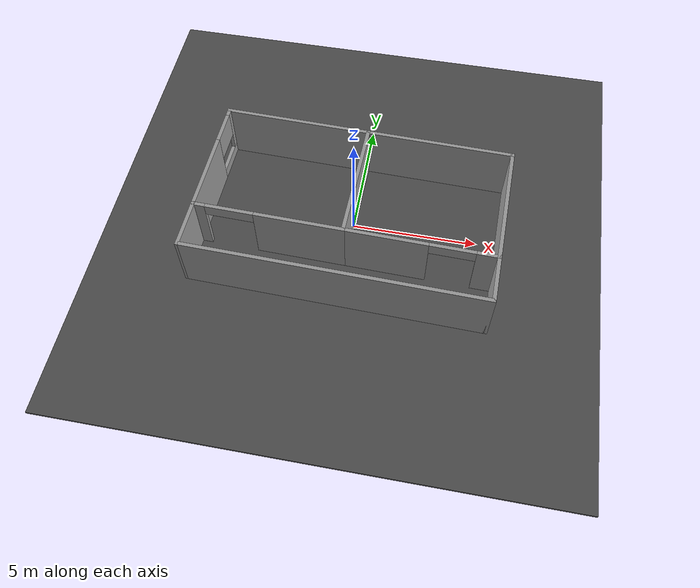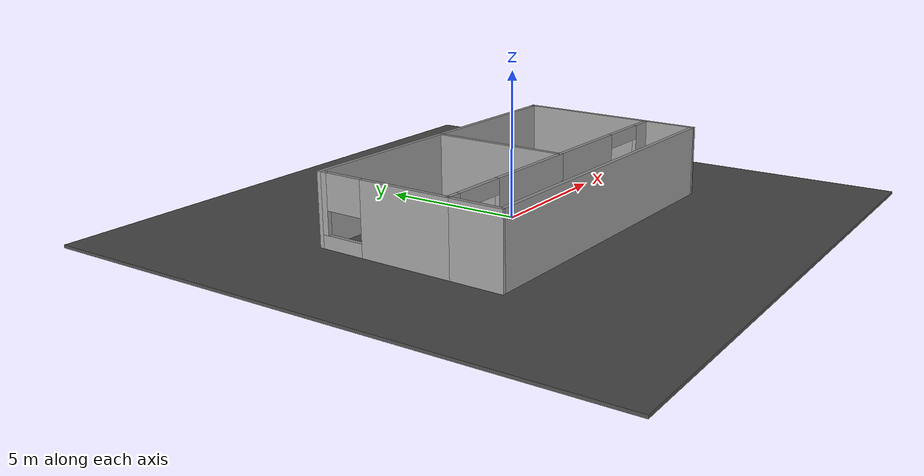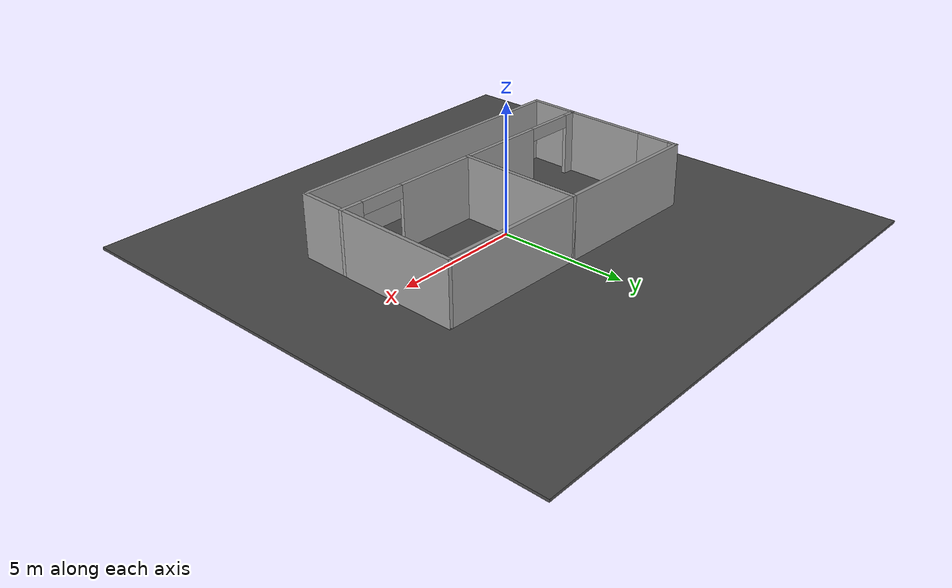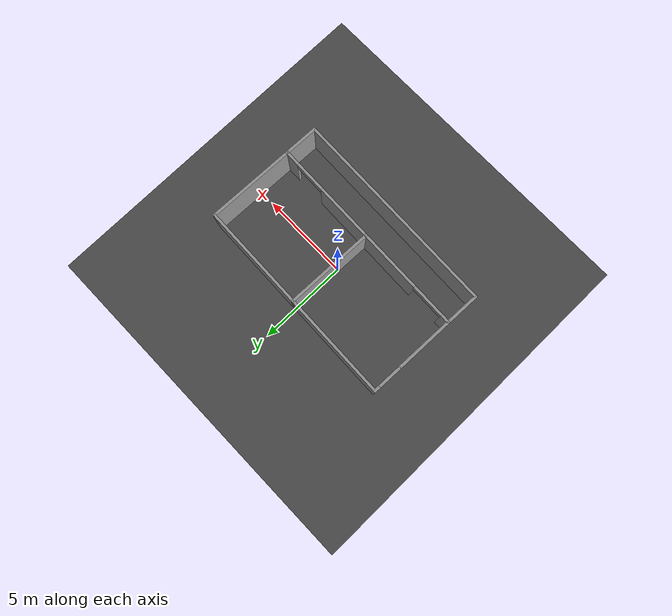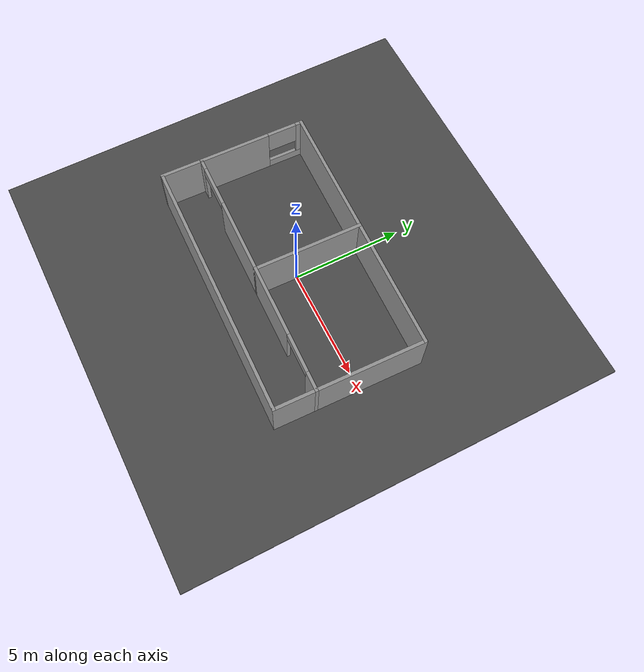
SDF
<sdf version="1.6">
 <world name="default">
  <scene><ambient>0.5 0.5 0.5 1</ambient><background>0.5 0.5 0.5 1</background><shadows>0</shadows></scene>
  <physics name="default_physics" default="0" type="ode">
   <ode>
    <solver>
     <type>quick</type>
     <iters>10</iters>
     <sor>1.3</sor>
     <use_dynamic_moi_rescaling>0</use_dynamic_moi_rescaling>
    </solver>
    <constraints>
     <cfm>0</cfm>
     <erp>0.2</erp>
     <contact_max_correcting_vel>100</contact_max_correcting_vel>
     <contact_surface_layer>0.001</contact_surface_layer>
    </constraints>
   </ode>
   <real_time_update_rate>1000</real_time_update_rate>
   <max_step_size>0.001</max_step_size>
   <real_time_factor>1</real_time_factor>
  </physics>
  <light name="directional_light_1" type="directional">
   <cast_shadows>0</cast_shadows>
   <pose>0 0 30 0.1 0.1 0</pose>
   <diffuse>1 1 1 1</diffuse>
   <specular>0.1 0.1 0.1 1</specular>
   <attenuation><range>300</range></attenuation>
   <direction>0.1 0.1 -1</direction>
  </light>
  <model name="plane_model">
   <static>1</static>
   <link name="plane_model_link">
    <collision name="plane_model_collision">
     <geometry><plane><normal>0 0 1</normal><size>1 1</size></plane></geometry>
     <surface>
      <friction><ode><mu>10</mu><mu2>10</mu2><fdir1>0 0 0</fdir1><slip1>0</slip1><slip2>0</slip2></ode></friction>
      <bounce><restitution_coefficient>0</restitution_coefficient><threshold>1e+06</threshold></bounce>
      <contact>
       <ode>
        <soft_cfm>0</soft_cfm>
        <soft_erp>0.2</soft_erp>
        <kp>1e+10</kp>
        <kd>1</kd>
        <max_vel>100</max_vel>
        <min_depth>0.0001</min_depth>
       </ode>
      </contact>
     </surface>
    </collision>
    <velocity_decay><linear>0</linear><angular>0</angular></velocity_decay>
   </link>
  </model>
  <model name="asphalt_plane">
   <static>1</static>
   <link name="link">
    <collision name="collision"><geometry><box><size>20 20 0.1</size></box></geometry></collision>
    <visual name="visual">
     <cast_shadows>0</cast_shadows>
     <geometry><box><size>20 20 0.1</size></box></geometry>
     <material>
      <script>
       <uri>model://asphalt_plane/materials/scripts</uri>
       <uri>model://asphalt_plane/materials/textures</uri>
       <name>vrc/asphalt</name>
      </script>
     </material>
    </visual>
    <velocity_decay><linear>0</linear><angular>0</angular></velocity_decay>
   </link>
   <pose>-0.010451 0.055967 0 0 -0 0</pose>
  </model>
  <spherical_coordinates>
   <surface_model>EARTH_WGS84</surface_model>
   <latitude_deg>0</latitude_deg>
   <longitude_deg>0</longitude_deg>
   <elevation>0</elevation>
   <heading_deg>0</heading_deg>
  </spherical_coordinates>
  <gravity>0 0 -9.81</gravity>
  <magnetic_field>6e-06 2.3e-05 -4.2e-05</magnetic_field>
  <atmosphere type="adiabatic"/>
  <model name="smaller_tworooms">
   <pose>-0.031771 -0.367239 0 0 -0 3.11512</pose>
   <link name="Wall_0">
    <pose>2.925 1.5 0 0 -0 0</pose>
    <visual name="Wall_0_Visual_0">
     <pose>-1.22619 0 1.25 0 -0 0</pose>
     <geometry><box><size>3.54761 0.15 2.5</size></box></geometry>
     <material>
      <script><uri>file://media/materials/scripts/gazebo.material</uri><name>Gazebo/Grey</name></script>
      <ambient>1 1 1 1</ambient>
     </material>
     <meta><layer>0</layer></meta>
    </visual>
    <collision name="Wall_0_Collision_0">
     <geometry><box><size>3.54761 0.15 2.5</size></box></geometry>
     <pose>-1.22619 0 1.25 0 -0 0</pose>
    </collision>
    <visual name="Wall_0_Visual_1">
     <pose>2.72664 0 1.25 0 -0 0</pose>
     <geometry><box><size>0.546712 0.15 2.5</size></box></geometry>
     <material>
      <script><uri>file://media/materials/scripts/gazebo.material</uri><name>Gazebo/Grey</name></script>
      <ambient>1 1 1 1</ambient>
     </material>
     <meta><layer>0</layer></meta>
    </visual>
    <collision name="Wall_0_Collision_1">
     <geometry><box><size>0.546712 0.15 2.5</size></box></geometry>
     <pose>2.72664 0 1.25 0 -0 0</pose>
    </collision>
    <visual name="Wall_0_Visual_2">
     <pose>1.50045 0 2.25 0 -0 0</pose>
     <geometry><box><size>1.90568 0.15 0.5</size></box></geometry>
     <material>
      <script><uri>file://media/materials/scripts/gazebo.material</uri><name>Gazebo/Grey</name></script>
      <ambient>1 1 1 1</ambient>
     </material>
     <meta><layer>0</layer></meta>
    </visual>
    <collision name="Wall_0_Collision_2">
     <geometry><box><size>1.90568 0.15 0.5</size></box></geometry>
     <pose>1.50045 0 2.25 0 -0 0</pose>
    </collision>
   </link>
   <link name="Wall_1">
    <pose>5.85 -0.925 0 0 0 -1.5708</pose>
    <visual name="Wall_1_Visual_0">
     <pose>-0.854528 0 1.25 0 -0 0</pose>
     <geometry><box><size>3.29094 0.15 2.5</size></box></geometry>
     <material>
      <script><uri>file://media/materials/scripts/gazebo.material</uri><name>Gazebo/Grey</name></script>
      <ambient>1 1 1 1</ambient>
     </material>
     <meta><layer>0</layer></meta>
    </visual>
    <collision name="Wall_1_Collision_0">
     <geometry><box><size>3.29094 0.15 2.5</size></box></geometry>
     <pose>-0.854528 0 1.25 0 -0 0</pose>
    </collision>
    <visual name="Wall_1_Visual_1">
     <pose>1.64547 0 0.25 0 -0 0</pose>
     <geometry><box><size>1.70905 0.15 0.5</size></box></geometry>
     <material>
      <script><uri>file://media/materials/scripts/gazebo.material</uri><name>Gazebo/Grey</name></script>
      <ambient>1 1 1 1</ambient>
     </material>
     <meta><layer>0</layer></meta>
    </visual>
    <collision name="Wall_1_Collision_1">
     <geometry><box><size>1.70905 0.15 0.5</size></box></geometry>
     <pose>1.64547 0 0.25 0 -0 0</pose>
    </collision>
    <visual name="Wall_1_Visual_2">
     <pose>2.31701 0 1.5 0 -0 0</pose>
     <geometry><box><size>0.365989 0.15 2</size></box></geometry>
     <material>
      <script><uri>file://media/materials/scripts/gazebo.material</uri><name>Gazebo/Grey</name></script>
      <ambient>1 1 1 1</ambient>
     </material>
     <meta><layer>0</layer></meta>
    </visual>
    <collision name="Wall_1_Collision_2">
     <geometry><box><size>0.365989 0.15 2</size></box></geometry>
     <pose>2.31701 0 1.5 0 -0 0</pose>
    </collision>
    <visual name="Wall_1_Visual_3">
     <pose>1.46248 0 1.9 0 -0 0</pose>
     <geometry><box><size>1.34307 0.15 1.2</size></box></geometry>
     <material>
      <script><uri>file://media/materials/scripts/gazebo.material</uri><name>Gazebo/Grey</name></script>
      <ambient>1 1 1 1</ambient>
     </material>
     <meta><layer>0</layer></meta>
    </visual>
    <collision name="Wall_1_Collision_3">
     <geometry><box><size>1.34307 0.15 1.2</size></box></geometry>
     <pose>1.46248 0 1.9 0 -0 0</pose>
    </collision>
   </link>
   <link name="Wall_10">
    <collision name="Wall_10_Collision">
     <geometry><box><size>2 0.15 2.5</size></box></geometry>
     <pose>0 0 1.25 0 -0 0</pose>
    </collision>
    <visual name="Wall_10_Visual">
     <pose>0 0 1.25 0 -0 0</pose>
     <geometry><box><size>2 0.15 2.5</size></box></geometry>
     <material>
      <script><uri>file://media/materials/scripts/gazebo.material</uri><name>Gazebo/Grey</name></script>
      <ambient>1 1 1 1</ambient>
     </material>
     <meta><layer>0</layer></meta>
    </visual>
    <pose>5.85 2.425 0 0 0 -1.5708</pose>
   </link>
   <link name="Wall_14">
    <collision name="Wall_14_Collision">
     <geometry><box><size>2 0.15 2.5</size></box></geometry>
     <pose>0 0 1.25 0 -0 0</pose>
    </collision>
    <visual name="Wall_14_Visual">
     <pose>0 0 1.25 0 -0 0</pose>
     <geometry><box><size>2 0.15 2.5</size></box></geometry>
     <material>
      <script><uri>file://media/materials/scripts/gazebo.material</uri><name>Gazebo/Grey</name></script>
      <ambient>1 1 1 1</ambient>
     </material>
     <meta><layer>0</layer></meta>
    </visual>
    <pose>-5.85 2.425 0 0 -0 1.5708</pose>
   </link>
   <link name="Wall_16">
    <collision name="Wall_16_Collision">
     <geometry><box><size>11.75 0.15 2.5</size></box></geometry>
     <pose>0 0 1.25 0 -0 0</pose>
    </collision>
    <visual name="Wall_16_Visual">
     <pose>0 0 1.25 0 -0 0</pose>
     <geometry><box><size>11.75 0.15 2.5</size></box></geometry>
     <material>
      <script><uri>file://media/materials/scripts/gazebo.material</uri><name>Gazebo/Grey</name></script>
      <ambient>1 1 1 1</ambient>
     </material>
     <meta><layer>0</layer></meta>
    </visual>
    <pose>-0.05 3.35 0 0 -0 0</pose>
   </link>
   <link name="Wall_2">
    <collision name="Wall_2_Collision">
     <geometry><box><size>6 0.15 2.5</size></box></geometry>
     <pose>0 0 1.25 0 -0 0</pose>
    </collision>
    <visual name="Wall_2_Visual">
     <pose>0 0 1.25 0 -0 0</pose>
     <geometry><box><size>6 0.15 2.5</size></box></geometry>
     <material>
      <script><uri>file://media/materials/scripts/gazebo.material</uri><name>Gazebo/Grey</name></script>
      <ambient>1 1 1 1</ambient>
     </material>
     <meta><layer>0</layer></meta>
    </visual>
    <pose>2.925 -3.35 0 0 -0 3.14159</pose>
   </link>
   <link name="Wall_3">
    <collision name="Wall_3_Collision">
     <geometry><box><size>5 0.15 2.5</size></box></geometry>
     <pose>0 0 1.25 0 -0 0</pose>
    </collision>
    <visual name="Wall_3_Visual">
     <pose>0 0 1.25 0 -0 0</pose>
     <geometry><box><size>5 0.15 2.5</size></box></geometry>
     <material>
      <script><uri>file://media/materials/scripts/gazebo.material</uri><name>Gazebo/Grey</name></script>
      <ambient>1 1 1 1</ambient>
     </material>
     <meta><layer>0</layer></meta>
    </visual>
    <pose>0 -0.925 0 0 -0 1.5708</pose>
   </link>
   <link name="Wall_4">
    <pose>-2.925 1.5 0 0 -0 3.14159</pose>
    <visual name="Wall_4_Visual_0">
     <pose>-1.33728 0 1.25 0 -0 0</pose>
     <geometry><box><size>3.32543 0.15 2.5</size></box></geometry>
     <material>
      <script><uri>file://media/materials/scripts/gazebo.material</uri><name>Gazebo/Grey</name></script>
      <ambient>1 1 1 1</ambient>
     </material>
     <meta><layer>0</layer></meta>
    </visual>
    <collision name="Wall_4_Collision_0">
     <geometry><box><size>3.32543 0.15 2.5</size></box></geometry>
     <pose>-1.33728 0 1.25 0 -0 0</pose>
    </collision>
    <visual name="Wall_4_Visual_1">
     <pose>2.54516 0 1.25 0 -0 0</pose>
     <geometry><box><size>0.909682 0.15 2.5</size></box></geometry>
     <material>
      <script><uri>file://media/materials/scripts/gazebo.material</uri><name>Gazebo/Grey</name></script>
      <ambient>1 1 1 1</ambient>
     </material>
     <meta><layer>0</layer></meta>
    </visual>
    <collision name="Wall_4_Collision_1">
     <geometry><box><size>0.909682 0.15 2.5</size></box></geometry>
     <pose>2.54516 0 1.25 0 -0 0</pose>
    </collision>
    <visual name="Wall_4_Visual_2">
     <pose>1.20788 0 2.25 0 -0 0</pose>
     <geometry><box><size>1.76488 0.15 0.5</size></box></geometry>
     <material>
      <script><uri>file://media/materials/scripts/gazebo.material</uri><name>Gazebo/Grey</name></script>
      <ambient>1 1 1 1</ambient>
     </material>
     <meta><layer>0</layer></meta>
    </visual>
    <collision name="Wall_4_Collision_2">
     <geometry><box><size>1.76488 0.15 0.5</size></box></geometry>
     <pose>1.20788 0 2.25 0 -0 0</pose>
    </collision>
   </link>
   <link name="Wall_5">
    <collision name="Wall_5_Collision">
     <geometry><box><size>5 0.15 2.5</size></box></geometry>
     <pose>0 0 1.25 0 -0 0</pose>
    </collision>
    <visual name="Wall_5_Visual">
     <pose>0 0 1.25 0 -0 0</pose>
     <geometry><box><size>5 0.15 2.5</size></box></geometry>
     <material>
      <script><uri>file://media/materials/scripts/gazebo.material</uri><name>Gazebo/Grey</name></script>
      <ambient>1 1 1 1</ambient>
     </material>
     <meta><layer>0</layer></meta>
    </visual>
    <pose>-5.85 -0.925 0 0 0 -1.5708</pose>
   </link>
   <link name="Wall_6">
    <collision name="Wall_6_Collision">
     <geometry><box><size>6 0.15 2.5</size></box></geometry>
     <pose>0 0 1.25 0 -0 0</pose>
    </collision>
    <visual name="Wall_6_Visual">
     <pose>0 0 1.25 0 -0 0</pose>
     <geometry><box><size>6 0.15 2.5</size></box></geometry>
     <material>
      <script><uri>file://media/materials/scripts/gazebo.material</uri><name>Gazebo/Grey</name></script>
      <ambient>1 1 1 1</ambient>
     </material>
     <meta><layer>0</layer></meta>
    </visual>
    <pose>-2.925 -3.35 0 0 -0 0</pose>
   </link>
   <static>1</static>
  </model>
  <light name="user_spot_light_0" type="spot">
   <pose>4.69854 -3.11687 1 0 -0 0</pose>
   <diffuse>0.5 0.5 0.5 1</diffuse>
   <specular>0.1 0.1 0.1 1</specular>
   <direction>0 0 -1</direction>
   <attenuation>
    <range>20</range>
    <constant>0.5</constant>
    <linear>0.01</linear>
    <quadratic>0.001</quadratic>
   </attenuation>
   <cast_shadows>0</cast_shadows>
   <spot><inner_angle>0.6</inner_angle><outer_angle>1</outer_angle><falloff>1</falloff></spot>
  </light>
 </world>
</sdf>
